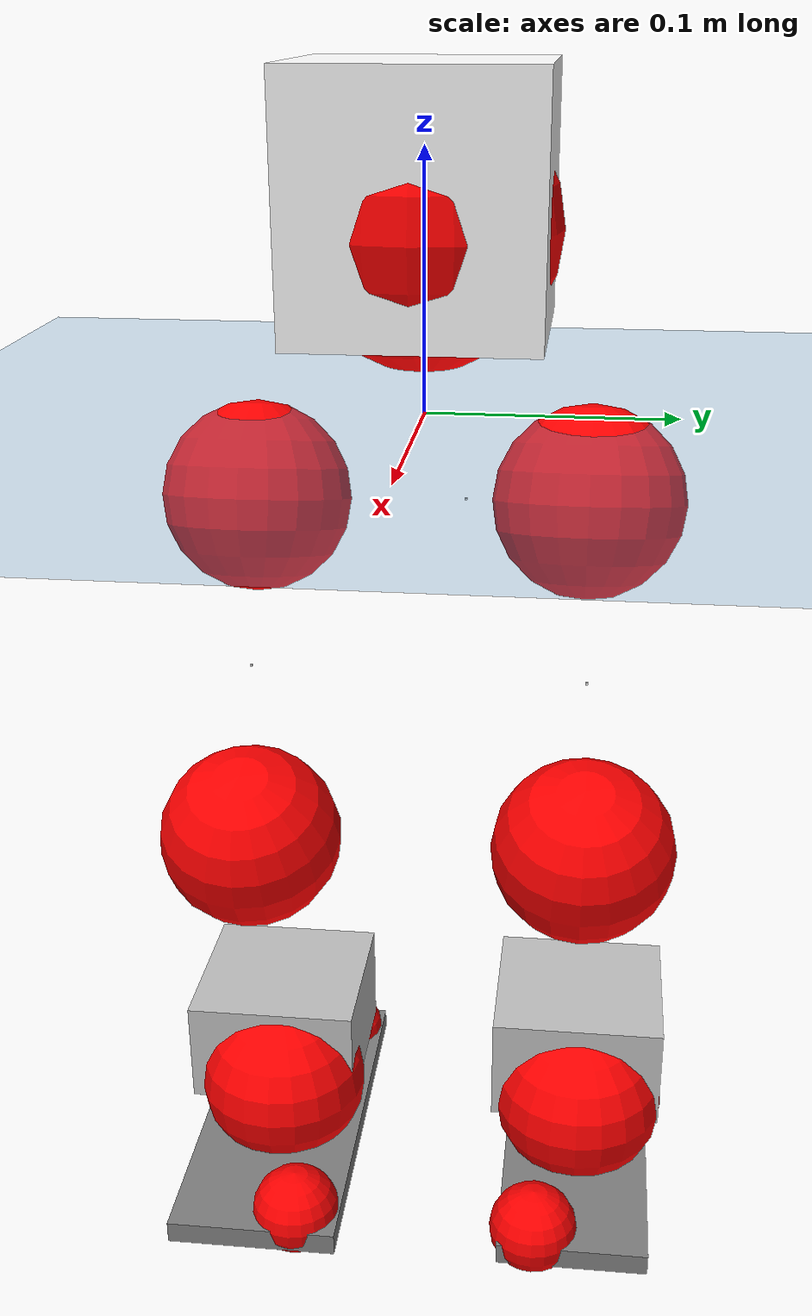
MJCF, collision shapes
<mujoco model="pi_12dof_release_v1">
  <compiler angle="radian" assetdir="assets" balanceinertia="true" inertiafromgeom="false"/>

  <option timestep="0.005" density="1.2" viscosity="2e-05"/>

  <size nkey="1"/>

  <visual>
    <quality shadowsize="8192"/>
    <map shadowclip="0.5"/>
  </visual>

  <default>
    <default class="/">
      <joint armature="0.01" damping="0.01" frictionloss="0.01"/>
      <geom contype="0" conaffinity="0" group="1" solref="-1000 -80"/>
      <site size="0.01 0.005 0.005" group="5"/>
      <general forcelimited="true" biastype="affine" gainprm="20" biasprm="0 -20 -0.5"/>
      <default class="foot">
        <geom size="0.0845 0.036 0.005" type="box" condim="6" group="4" priority="1" friction="0.9 0.2 0.2" solimp="0.015 1 0.005"/>
      </default>
      <default class="reward_collision_sphere">
        <geom group="5" rgba="1 0 0 1"/>
      </default>
    </default>
  </default>

  <asset>
    <texture type="skybox" colorspace="auto" name="//unnamed_texture_0" builtin="gradient" rgb1="0.95 0.95 0.95" rgb2="0.95 0.95 0.95" width="100" height="600"/>
    <texture type="2d" colorspace="auto" name="texplane" builtin="checker" rgb1="0.345 0.575 0.748" rgb2="0.345 0.575 0.748" markrgb="1 1 1" width="512" height="512"/>
    <material name="MatPlane" class="/" texture="texplane" texuniform="true" texrepeat="2 2" specular="0.9"/>
    <mesh name="baselink_1" class="/" file="baselink_1.STL"/>
    <mesh name="r_hip_pitch_link" class="/" file="r_hip_pitch_link.STL"/>
    <mesh name="r_hip_roll_link" class="/" file="r_hip_roll_link.STL"/>
    <mesh name="r_thigh_link" class="/" file="r_thigh_link.STL"/>
    <mesh name="r_calf_link" class="/" file="r_calf_link.STL"/>
    <mesh name="r_ankle_pitch_link" class="/" file="r_ankle_pitch_link.STL"/>
    <mesh name="r_ankle_roll_link" class="/" file="r_ankle_roll_link.STL"/>
    <mesh name="l_hip_pitch_link" class="/" file="l_hip_pitch_link.STL"/>
    <mesh name="l_hip_roll_link" class="/" file="l_hip_roll_link.STL"/>
    <mesh name="l_thigh_link" class="/" file="l_thigh_link.STL"/>
    <mesh name="l_calf_link" class="/" file="l_calf_link.STL"/>
    <mesh name="l_ankle_pitch_link" class="/" file="l_ankle_pitch_link.STL"/>
    <mesh name="l_ankle_roll_link" class="/" file="l_ankle_roll_link.STL"/>
  </asset>

  <worldbody>
    <geom name="floor" class="/" size="100 100 0.125" type="plane" group="0" material="MatPlane"/>
    <light name="toplight_shadow" class="/" pos="0 0 5" dir="0.0990148 0.0990148 -0.990148" type="directional" ambient="0.04 0.04 0.04" diffuse="0.55 0.55 0.55" specular="0.12 0.12 0.12"/>
    <light name="toplight_fill" class="/" pos="0 0 5" dir="0.0990148 0.0990148 -0.990148" type="directional" castshadow="false" ambient="0.04 0.04 0.04" diffuse="0.3 0.3 0.3" specular="0.08 0.08 0.08"/>
    <body name="trunk" pos="0.0027573 -5.73923e-05 -0.000113017" quat="1 -3.17267e-05 -0.000390135 0.000333859">
      <inertial pos="0.00206997 0.000586773 0.040963" quat="0.698945 0.0113837 0.00789448 0.715042" mass="1.93985" diaginertia="0.0110379 0.00465859 0.00448104"/>
      <joint name="//unnamed_joint_0" type="free"/>
      <geom name="//unnamed_geom_1" class="/" type="mesh" density="0" rgba="1 1 1 1" mesh="baselink_1"/>
      <geom name="//unnamed_geom_2" class="/" size="0.0482255 0.0482255 0.0482255" pos="0 0 0.0811916" type="box" rgba="1 1 1 1"/>
      <geom name="//unnamed_geom_3" class="reward_collision_sphere" size="0.0530481" pos="0 0 0.0710427"/>
      <site name="imu" class="/" pos="-0.00450085 0.00374308 -0.0133907" size="0.00964511"/>
      <camera name="track" class="/" pos="0 -1.73551 0" quat="0.707107 0.707107 0 0" mode="trackcom"/>
      <camera name="ego_camera" class="/" pos="0.0758162 0 0.182681" quat="-0.5 -0.5 0.5 0.5"/>
      <body name="r_hip_pitch_link" pos="0.000719405 -0.0199096 -0.034625" quat="0.992031 0.000195398 -0.125993 -0.000321417">
        <inertial pos="-0.00164867 -0.0497361 -3.73335e-05" quat="-0.0197099 0.706831 -0.0284512 0.706535" mass="0.334159" diaginertia="0.000115335 4.65655e-05 8.94897e-05"/>
        <joint name="r_hip_pitch_joint" class="/" pos="0 0 0" axis="-0.0128356 -0.999902 -0.00564325" stiffness="0.00260754" range="-1.69508 1.2882" armature="0.00968542" damping="0.0255473" frictionloss="0.00959359"/>
        <geom name="//unnamed_geom_4" class="/" type="mesh" density="0" rgba="0.75294 0.75294 0.75294 1" mesh="r_hip_pitch_link"/>
        <geom name="//unnamed_geom_5" class="/" size="0.000482255 0.000482255 0.000482255" type="box" rgba="0.75294 0.75294 0.75294 1"/>
        <body name="r_hip_roll_link" pos="-0.00203767 -0.0483393 -0.000461533" quat="1 0.000362416 0.000235244 7.16326e-05">
          <inertial pos="-0.00112578 0.000217815 -0.0646335" quat="0.704263 -0.0790535 -0.0846097 0.700432" mass="0.352463" diaginertia="0.000357215 0.00013745 0.00013813"/>
          <joint name="r_hip_roll_joint" class="/" pos="0 0 0" axis="-0.999908 -0.0106509 0.00834338" range="-0.137898 0.551777" armature="0.00968655" damping="0.00119489" frictionloss="0.00854868"/>
          <geom name="//unnamed_geom_6" class="/" type="mesh" density="0" rgba="0.75294 0.75294 0.75294 1" mesh="r_hip_roll_link"/>
          <geom name="//unnamed_geom_7" class="/" size="0.000482255 0.000482255 0.000482255" type="box" rgba="0.75294 0.75294 0.75294 1"/>
          <geom name="//unnamed_geom_8" class="reward_collision_sphere" size="0.0385804"/>
          <body name="r_thigh_link" pos="0.000825555 -0.00221559 -0.0699375" quat="0.999999 0.000488304 0.000127847 -0.000917064">
            <inertial pos="0.00114653 0.00181181 -0.0481617" quat="0.742349 0.669917 -0.00172818 -0.0112735" mass="0.105219" diaginertia="0.00013046 4.73212e-05 6.14747e-05"/>
            <joint name="r_thigh_joint" class="/" pos="0 0 0" axis="-0.000939665 -0.0110196 -0.999939" range="-0.257295 0.648617" armature="0.00945685" damping="0.00215629" frictionloss="0.00937529"/>
            <geom name="//unnamed_geom_9" class="/" type="mesh" density="0" rgba="0.75294 0.75294 0.75294 1" mesh="r_thigh_link"/>
            <geom name="//unnamed_geom_10" class="/" size="0.000482255 0.000482255 0.000482255" type="box" rgba="0.75294 0.75294 0.75294 1"/>
            <body name="r_calf_link" pos="-0.00247736 -0.000190771 -0.0735769" quat="0.947639 4.23829e-05 0.319344 -1.64469e-05">
              <inertial pos="0.00236718 -0.00132138 -0.0735813" quat="0.999939 0.00111421 -0.00476997 0.00992837" mass="0.747236" diaginertia="0.00382809 0.00173713 0.000194685"/>
              <joint name="r_calf_joint" class="/" pos="0 0 0" axis="0.00577197 -0.999964 0.00621458" range="-1.64782 0.650402" armature="0.010074" damping="0.0127746" frictionloss="0.0101023"/>
              <geom name="//unnamed_geom_11" class="/" type="mesh" density="0" rgba="0.75294 0.75294 0.75294 1" mesh="r_calf_link"/>
              <geom name="//unnamed_geom_12" class="/" size="0.000482255 0.000482255 0.000482255" type="box" rgba="0.75294 0.75294 0.75294 1"/>
              <geom name="//unnamed_geom_13" class="reward_collision_sphere" size="0.0385804"/>
              <body name="r_ankle_pitch_link" pos="5.96812e-05 -0.000795842 -0.140615" quat="0.980066 3.32224e-05 -0.19867 -2.47628e-05">
                <inertial pos="0.00385698 0.00549352 -0.00131212" quat="0.00201798 0.707399 -0.00207606 0.706809" mass="0.156989" diaginertia="0.000326773 0.000107143 0.000128318"/>
                <joint name="r_ankle_pitch_joint" class="/" pos="0 0 0" axis="-0.00924537 -0.999934 0.00682036" stiffness="0.0026731" range="-1.29491 0.502676" armature="0.0084771" damping="0.0111249" frictionloss="0.00856992"/>
                <geom name="//unnamed_geom_14" class="/" type="mesh" density="0" rgba="0.75294 0.75294 0.75294 1" mesh="r_ankle_pitch_link"/>
                <geom name="//unnamed_geom_15" class="/" size="0.0376159 0.0385804 0.0241128" type="box" rgba="0.75294 0.75294 0.75294 1"/>
                <body name="r_ankle_roll_link" pos="0.077963 0.0037745 0.00279337" quat="0.999999 0.000468154 -0.00124164 -0.000129654">
                  <inertial pos="-0.0217381 -0.00157683 -0.0121628" quat="0.558802 0.428801 0.438679 0.55806" mass="0.454733" diaginertia="0.00122181 0.000530401 0.000318431"/>
                  <joint name="r_ankle_roll_joint" class="/" pos="0 0 0" axis="-0.999924 0.00634653 -0.0105709" range="-0.156526 0.168226" armature="0.00918351" damping="0.0207642" frictionloss="0.010082"/>
                  <geom name="//unnamed_geom_16" class="/" type="mesh" density="0" rgba="0.75294 0.75294 0.75294 1" mesh="r_ankle_roll_link"/>
                  <geom name="//unnamed_geom_17" class="/" type="mesh" rgba="0.75294 0.75294 0.75294 1" mesh="r_ankle_roll_link"/>
                  <geom name="right_foot" class="foot" size="0.0838488 0.0370961 0.00490688" pos="-0.051555 0 -0.0446554"/>
                  <geom name="//unnamed_geom_19" class="reward_collision_sphere" size="0.0385804" pos="-0.0505441 0 -0.0202979"/>
                  <geom name="//unnamed_geom_20" class="reward_collision_sphere" size="0.0192902" pos="0.0151632 0.0173551 -0.0405958"/>
                  <geom name="//unnamed_geom_21" class="reward_collision_sphere" size="0.0192902" pos="-0.121306 0.0173551 -0.0405958"/>
                  <site name="right_foot" class="foot" pos="-0.051555 0 -0.0446554" size="0.00964511"/>
                </body>
              </body>
            </body>
          </body>
        </body>
      </body>
      <body name="l_hip_pitch_link" pos="0.001821 0.017246 -0.0333074" quat="0.992199 0.000317081 -0.124664 0.000354081">
        <inertial pos="0.00358256 0.0444091 -0.00016547" quat="-0.0402937 0.713881 0.0226067 0.698741" mass="0.347723" diaginertia="0.000137568 5.19603e-05 0.000105157"/>
        <joint name="l_hip_pitch_joint" class="/" pos="0 0 0" axis="0.00736138 0.999955 0.00590821" range="-1.3021 1.7333" armature="0.00835964" damping="0.00454932" frictionloss="0.0100123"/>
        <geom name="//unnamed_geom_22" class="/" type="mesh" density="0" rgba="0.75294 0.75294 0.75294 1" mesh="l_hip_pitch_link"/>
        <geom name="//unnamed_geom_23" class="/" size="0.000482255 0.000482255 0.000482255" type="box" rgba="0.75294 0.75294 0.75294 1"/>
        <body name="l_hip_roll_link" pos="0.0023327 0.0491851 0.000340453" quat="1 5.90314e-05 -1.66198e-05 -3.27045e-05">
          <inertial pos="-0.00195199 0.00262151 -0.0618579" quat="0.694511 -0.0694836 -0.0869597 0.71082" mass="0.353667" diaginertia="0.000352498 0.000140942 0.000137804"/>
          <joint name="l_hip_roll_joint" class="/" pos="0 0 0" axis="-0.999997 -0.00158446 0.00199275" range="-0.485026 0.124181" armature="0.011018" damping="0" frictionloss="0.0089707"/>
          <geom name="//unnamed_geom_24" class="/" type="mesh" density="0" rgba="0.75294 0.75294 0.75294 1" mesh="l_hip_roll_link"/>
          <geom name="//unnamed_geom_25" class="/" size="0.000482255 0.000482255 0.000482255" type="box" rgba="0.75294 0.75294 0.75294 1"/>
          <geom name="//unnamed_geom_26" class="reward_collision_sphere" size="0.0385804"/>
          <body name="l_thigh_link" pos="-0.00126663 0.00208413 -0.0728253" quat="0.999999 -0.000141823 0.0012397 0.000146029">
            <inertial pos="-0.000576196 -0.00160787 -0.0459233" quat="0.678967 0.734161 0.000729063 -0.00326412" mass="0.0974313" diaginertia="0.000130757 4.61982e-05 6.26499e-05"/>
            <joint name="l_thigh_joint" class="/" pos="0 0 0" axis="0.00472846 -0.000124631 -0.999989" stiffness="0.000324952" range="-0.655705 0.31218" armature="0.00970648" damping="0" frictionloss="0.0095277"/>
            <geom name="//unnamed_geom_27" class="/" type="mesh" density="0" rgba="0.75294 0.75294 0.75294 1" mesh="l_thigh_link"/>
            <geom name="//unnamed_geom_28" class="/" size="0.000482255 0.000482255 0.000482255" type="box" rgba="0.75294 0.75294 0.75294 1"/>
            <body name="l_calf_link" pos="-0.00323278 0.00165215 -0.070688" quat="0.947641 -0.000227864 0.319338 -0.000170685">
              <inertial pos="0.00260903 0.00348008 -0.0711879" quat="0.999854 -0.00276093 -0.00185132 0.0167559" mass="0.738872" diaginertia="0.00383131 0.0017857 0.00019448"/>
              <joint name="l_calf_joint" class="/" pos="0 0 0" axis="-0.0139141 0.999903 -0.000923319" stiffness="0.000288204" range="-0.606823 1.65181" armature="0.00940827" damping="0.0065158" frictionloss="0.00835703"/>
              <geom name="//unnamed_geom_29" class="/" type="mesh" density="0" rgba="0.75294 0.75294 0.75294 1" mesh="l_calf_link"/>
              <geom name="//unnamed_geom_30" class="/" size="0.000482255 0.000482255 0.000482255" type="box" rgba="0.75294 0.75294 0.75294 1"/>
              <geom name="//unnamed_geom_31" class="reward_collision_sphere" size="0.0385804"/>
              <body name="l_ankle_pitch_link" pos="-9.23017e-05 0.00163623 -0.139882" quat="0.98007 -1.3427e-05 -0.198651 4.94852e-05">
                <inertial pos="0.0041041 -0.000897578 -0.00099783" quat="0.00875863 0.711204 0.00127107 0.70293" mass="0.160233" diaginertia="0.000323457 0.000113007 0.000133275"/>
                <joint name="l_ankle_pitch_joint" class="/" pos="0 0 0" axis="0.00116329 0.999999 -0.000834586" range="-0.468484 1.34127" armature="0.0100936" damping="0" frictionloss="0.00913681"/>
                <geom name="//unnamed_geom_32" class="/" type="mesh" density="0" rgba="0.75294 0.75294 0.75294 1" mesh="l_ankle_pitch_link"/>
                <geom name="//unnamed_geom_33" class="/" size="0.0376159 0.0385804 0.0241128" type="box" rgba="0.75294 0.75294 0.75294 1"/>
                <body name="l_ankle_roll_link" pos="0.0765424 0.00140812 -0.000318695" quat="1 -3.61066e-06 0.000207028 0.000178353">
                  <inertial pos="-0.0274958 -0.00268218 -0.0120017" quat="0.560172 0.431276 0.434696 0.557896" mass="0.48265" diaginertia="0.00116868 0.000526477 0.000305427"/>
                  <joint name="l_ankle_roll_joint" class="/" pos="0 0 0" axis="-0.999994 0.00160029 -0.00296075" stiffness="0.00982176" range="-0.174473 0.118003" armature="0.0092534" damping="0.0210144" frictionloss="0.0109688"/>
                  <geom name="//unnamed_geom_34" class="/" type="mesh" density="0" rgba="0.75294 0.75294 0.75294 1" mesh="l_ankle_roll_link"/>
                  <geom name="//unnamed_geom_35" class="/" type="mesh" rgba="0.75294 0.75294 0.75294 1" mesh="l_ankle_roll_link"/>
                  <geom name="left_foot" class="foot" size="0.0809225 0.0326647 0.00475859" pos="-0.051555 0 -0.0446554"/>
                  <geom name="//unnamed_geom_37" class="reward_collision_sphere" size="0.0385804" pos="-0.0505441 0 -0.0202979"/>
                  <geom name="//unnamed_geom_38" class="reward_collision_sphere" size="0.0192902" pos="0.0151632 -0.0173551 -0.0405958"/>
                  <geom name="//unnamed_geom_39" class="reward_collision_sphere" size="0.0192902" pos="-0.121306 -0.0173551 -0.0405958"/>
                  <site name="left_foot" class="foot" pos="-0.051555 0 -0.0446554" size="0.00964511"/>
                </body>
              </body>
            </body>
          </body>
        </body>
      </body>
    </body>
  </worldbody>

  <contact>
    <pair class="/" geom1="floor" geom2="right_foot" name="//unnamed_contact_1"/>
    <pair class="/" geom1="floor" geom2="left_foot" name="//unnamed_contact_0"/>
  </contact>

  <actuator>
    <general name="r_hip_pitch_joint" class="/" joint="r_hip_pitch_joint" forcerange="-20.6145 20.6145" gainprm="19.1896" biasprm="0 -19.1896 -0.490803"/>
    <general name="r_hip_roll_joint" class="/" joint="r_hip_roll_joint" forcerange="-22.3717 22.3717" gainprm="19.1896" biasprm="0 -19.1896 -0.490803"/>
    <general name="r_thigh_joint" class="/" joint="r_thigh_joint" forcerange="-20.3931 20.3931" gainprm="19.1896" biasprm="0 -19.1896 -0.490803"/>
    <general name="r_calf_joint" class="/" joint="r_calf_joint" forcerange="-22.2445 22.2445" gainprm="19.1896" biasprm="0 -19.1896 -0.490803"/>
    <general name="r_ankle_pitch_joint" class="/" joint="r_ankle_pitch_joint" forcerange="-20.9328 20.9328" gainprm="19.1896" biasprm="0 -19.1896 -0.490803"/>
    <general name="r_ankle_roll_joint" class="/" joint="r_ankle_roll_joint" forcerange="-19.6531 19.6531" gainprm="19.1896" biasprm="0 -19.1896 -0.490803"/>
    <general name="l_hip_pitch_joint" class="/" joint="l_hip_pitch_joint" forcerange="-20.1697 20.1697" gainprm="19.1896" biasprm="0 -19.1896 -0.490803"/>
    <general name="l_hip_roll_joint" class="/" joint="l_hip_roll_joint" forcerange="-18.2445 18.2445" gainprm="19.1896" biasprm="0 -19.1896 -0.490803"/>
    <general name="l_thigh_joint" class="/" joint="l_thigh_joint" forcerange="-20.4459 20.4459" gainprm="19.1896" biasprm="0 -19.1896 -0.490803"/>
    <general name="l_calf_joint" class="/" joint="l_calf_joint" forcerange="-20.351 20.351" gainprm="19.1896" biasprm="0 -19.1896 -0.490803"/>
    <general name="l_ankle_pitch_joint" class="/" joint="l_ankle_pitch_joint" forcerange="-19.83 19.83" gainprm="19.1896" biasprm="0 -19.1896 -0.490803"/>
    <general name="l_ankle_roll_joint" class="/" joint="l_ankle_roll_joint" forcerange="-21.395 21.395" gainprm="19.1896" biasprm="0 -19.1896 -0.490803"/>
  </actuator>

  <sensor>
    <gyro site="imu" name="imu_angular_velocity"/>
    <velocimeter site="imu" name="imu_linear_velocity"/>
    <framelinvel objtype="site" objname="left_foot" name="left_foot_global_linear_velocity"/>
    <framelinvel objtype="site" objname="right_foot" name="right_foot_global_linear_velocity"/>
  </sensor>

  <keyframe>
    <key name="home" qpos="0 0 0.291 1 0 0 0 0.4 0 0 -0.8 0.4 0 -0.4 0 0 0.8 -0.4 0"/>
  </keyframe>
</mujoco>
